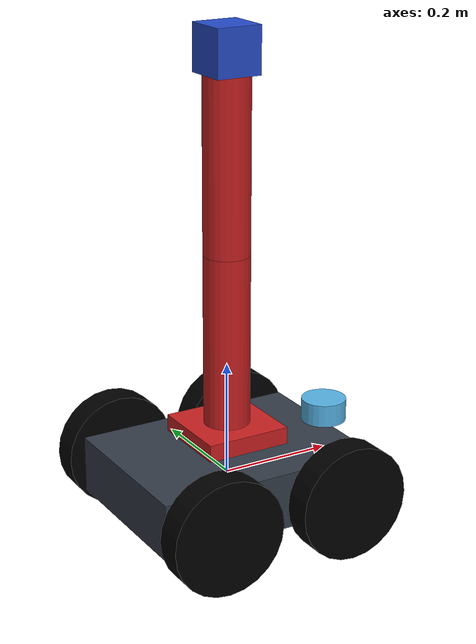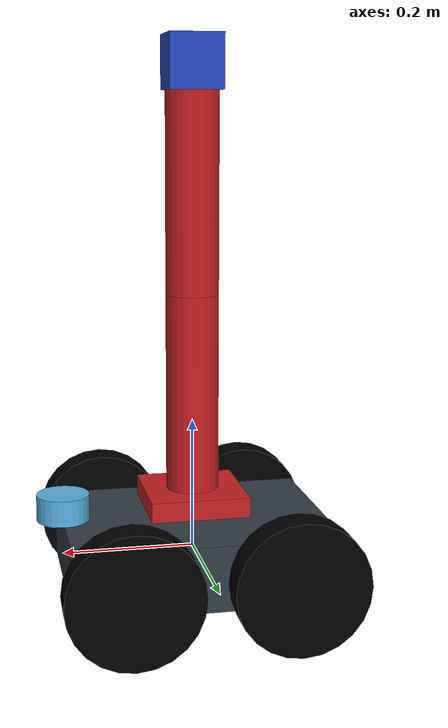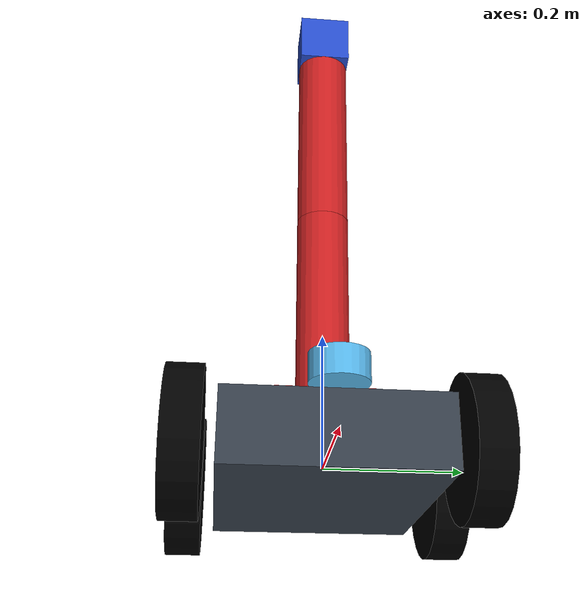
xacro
<?xml version="1.0"?>
<robot name="A"
    xmlns:xacro="http://ros.org/wiki/xacro">

<!-- WHEEL -->
  <xacro:property name="wheel_radius" value="0.1" />
  <xacro:property name="wheel_thickness" value="0.05" />
<!-- ARM -->
  <xacro:property name="arm_radius" value="0.04" />
  <xacro:property name="arm_height" value="0.3" />
<!-- CHASSIS -->
  <xacro:property name="chassis_length" value="0.4" /> <!-- X axis -->
  <xacro:property name="chassis_breadth" value="0.3" /> <!-- Y axis -->
  <xacro:property name="chassis_height" value="0.1" /> <!-- Z axis -->

<!-- Material -->
  <material name="black">
   <color rgba="0.0 0.0 0.0 1.0"/>
  </material>
  <material name="blue">
   <color rgba="0.203125 0.23828125 0.28515625 1.0"/>
  </material>
  <material name="red">
   <color rgba="0.80078125 0.12890625 0.1328125 1.0"/>
  </material>
  <material name="white">
   <color rgba="1.0 1.0 1.0 1.0"/>
  </material>

<!-- Box Inertia -->
  <xacro:macro name="box_inertia" params="mass x y z">
    <inertial>
      <mass value="${mass}"/>
      <inertia ixx="${(1/12)*mass*(y*y+z*z)}"
               ixy="0.0"
               ixz="0.0"
               iyy="${(1/12)*mass*(x*x+z*z)}"
               iyz="0.0"
               izz="${(1/12)*mass*(y*y+x*x)}" />
    </inertial>
  </xacro:macro>
<!-- Cylinder Inertia Wheels-->
  <xacro:macro name="cyl_inertia_W" params="mass r h">
    <inertial>
      <mass value="${mass}" />
      <inertia ixx="${(1/12)*mass*(3*r*r+h*h)}"
               ixy="0.0"
               ixz="0.0"
               iyy="${(1/12)*mass*(3*r*r+h*h)}"
               iyz="0.0"
               izz="${(1/2)*mass*r*r}" />
    </inertial>
  </xacro:macro>
<!-- Cylinder Inertia Arms-->
    <xacro:macro name="cyl_inertia_A">
      <inertial>
        <mass value="0.01" />
        <inertia ixx="0.000010279"
                 ixy="0.0"
                 ixz="0.0"
                 iyy="0.000010279"
                 iyz="0.0"
                 izz="0.000007225" />
      </inertial>
    </xacro:macro>

<!-- BASE -->
  <link name="base_link"></link>
<!-- Chassis -->
  <link name="chassis">
    <visual>
      <geometry>
        <box size="${chassis_length} ${chassis_breadth} ${chassis_height}"/>
      </geometry>
      <material name="blue"/>
    </visual>
    <collision>
      <geometry>
        <box size="${chassis_length} ${chassis_breadth} ${chassis_height}"/>
      </geometry>
    </collision>
    <xacro:box_inertia mass="0.5" x="${chassis_length}" y="${chassis_breadth}" z="${chassis_height}"/>
  </link>

  <joint name="chassis_joint" type="fixed">
      <parent link="base_link"/>
      <child link="chassis"/>
  </joint>

  <gazebo reference="chassis">
       <material>Gazebo/White</material>
    </gazebo>

<!-- WHEEL -->
  <xacro:macro name="wheel" params="prefix suffix posx posy">
    <link name="${prefix}_${suffix}_wheel">
      <visual>
        <origin xyz="0 0 0" rpy="${pi/2} 0 0" />
        <geometry>
          <cylinder radius="${wheel_radius}" length="${wheel_thickness}"/>
        </geometry>
        <material name="black"/>
      </visual>
      <collision>
        <origin xyz="0 0 0" rpy="${pi/2} 0 0" />
        <geometry>
          <cylinder radius="${wheel_radius}" length="${wheel_thickness}"/>
        </geometry>
      </collision>
      <xacro:cyl_inertia_W mass="0.1" r="${wheel_radius}" h="${wheel_thickness}"/>
    </link>

    <joint name="${prefix}_${suffix}_wheel_joint" type="continuous">
      <axis xyz="0 1 0" rpy="0 0 0" />
      <parent link="chassis"/>
      <child link="${prefix}_${suffix}_wheel"/>
      <origin xyz="${(chassis_length*0.3)*posx} ${(chassis_breadth/2+wheel_thickness/2)*1.1*posy} 0" rpy="0 0 0"/>
      <dynamics damping="0"/>
    </joint>

    <gazebo reference="${prefix}_${suffix}_wheel">
       <material>Gazebo/DarkGray</material>
    </gazebo>

    <transmission name="${prefix}_${suffix}_wheel_trans">
      <type>transmission_interface/SimpleTransmission</type>
      <joint name="${prefix}_${suffix}_wheel_joint">
        <!-- Needed for ros deifferential drive controller -->
        <!-- Needed for gazebo differential drive controller -->
        <hardwareInterface>hardware_interface/EffortJointInterface</hardwareInterface>
      </joint>
      <actuator name="${prefix}_${suffix}_wheel_motor">
        <!-- Needed for ros deifferential drive controller -->
        <!-- Needed for gazebo differential drive controller -->
        <hardwareInterface>hardware_interface/EffortJointInterface</hardwareInterface>
        <mechanicalReduction>1</mechanicalReduction>
      </actuator>
    </transmission>
  </xacro:macro>

  <xacro:wheel prefix="front" suffix="left" posx="1" posy="1"/>
  <xacro:wheel prefix="front" suffix="right" posx="1" posy="-1"/>
  <xacro:wheel prefix="back" suffix="left" posx="-1" posy="1"/>
  <xacro:wheel prefix="back" suffix="right" posx="-1" posy="-1"/>

<!-- ARMS -->
  <xacro:macro name="arm" params="number posz">
    <link name="arm_${number}">
      <visual>
        <origin xyz="0 0 ${posz}" rpy="0 0 0" />
        <geometry>
          <cylinder radius="${arm_radius}" length="${arm_height}"/>
        </geometry>
        <material name="red"/>
      </visual>
      <collision>
        <origin xyz="0 0 ${posz}" rpy="0 0 0" />
        <geometry>
          <cylinder radius="${arm_radius}" length="0.2"/>
        </geometry>
      </collision>
      <xacro:cyl_inertia_A/>
    </link>

    <gazebo reference="arm_${number}">
      <material>Gazebo/Red</material>
    </gazebo>

    <transmission name="arm_${number}_trans">
      <type>transmission_interface/SimpleTransmission</type>
      <joint name="arm_${number}_joint">
        <hardwareInterface>hardware_interface/EffortJointInterface</hardwareInterface>
    	</joint>
      <actuator name="arm_${number}_motor">
    		<hardwareInterface>hardware_interface/EffortJointInterface</hardwareInterface>
    		<mechanicalInterface>1</mechanicalInterface>
      </actuator>
    </transmission>
  </xacro:macro>

<!-- Arm-Chassis -->
  <link name="arm_chassis">
    <inertial>
      <mass value="0.1"/>
      <origin xyz="0 0 0" rpy="0 0 0"/>
      <inertia ixx="0.0000416666667"
               ixy="0"
               ixz="0"
               iyy="0.0000416666667"
               iyz="0"
               izz="0.0000416666667"/>
    </inertial>
    <collision>
      <origin xyz="0 0 0" rpy="0 0 0"/>
      <geometry>
        <box size="0.15 0.15 0.03"/>
      </geometry>
    </collision>
    <visual>
      <origin xyz="0 0 0" rpy="0 0 0"/>
      <geometry>
        <box size="0.15 0.15 0.03"/>
      </geometry>
      <material name="red" />
    </visual>
  </link>

  <transmission name="arm_chassis_trans">
      <type>transmission_interface/SimpleTransmission</type>
      <joint name="arm_chassis_joint">
          <hardwareInterface>hardware_interface/EffortJointInterface</hardwareInterface>
      </joint>
      <actuator name="arm_chassis_motor">
          <hardwareInterface>hardware_interface/EffortJointInterface</hardwareInterface>
          <mechanicalInterface>1</mechanicalInterface>
      </actuator>
  </transmission>
  <joint name="arm_chassis_joint" type="continuous">
      <axis xyz="0 0 1" />
      <origin rpy="0 0 0" xyz="0 0 0.08" />
      <parent link="chassis" />
      <child link="arm_chassis" />
  </joint>

  <gazebo reference="arm_chassis">
   <material>Gazebo/Red</material>
  </gazebo>

<!-- Arm 1 -->
  <xacro:arm number="1" posz="${arm_height/2}"/>

  <joint name="arm_1_joint" type="revolute">
  	<axis xyz="0 1 0"/>
  	<limit effort="1000.0"
           lower="-1.8"
           upper="1.8"
           velocity="0.2"/>
  	<origin rpy="0 0 0" xyz="0 0 0.015"/>
  	<parent link="arm_chassis"/>
  	<child link="arm_1"/>
  </joint>

<!-- Arm 2 -->
  <xacro:arm number="2" posz="${arm_height/2}"/>

  <joint name="arm_2_joint" type="revolute">
    <axis xyz="0 1 0"/>
    <limit effort="1000.0"
           lower="-1.8"
           upper="1.8"
           velocity="0.2"/>
    <origin rpy="0 0 0" xyz="0 0 ${arm_height}"/>
    <parent link="arm_1"/>
    <child link="arm_2"/>
  </joint>

<!-- SESNORS -->
  <xacro:include filename="$(find assignment2)/urdf/sensors.xacro"/>

<!-- LaserScan -->
  <xacro:LaserScan laser_name="LaserScan" parent_link="chassis">
    <cylinder length="0.04" radius="0.04"/>
    <origin xyz="${(chassis_length/2)} 0 ${(chassis_height/2)*1.5}" rpy="0 0 0"/>
  </xacro:LaserScan>

<!-- RGB Camera -->
<xacro:RGB_camera camera_name="RGB" parent_link="arm_2">
  <box size="0.08 0.08 0.08"/>
  <origin xyz="0 0 0.34" rpy="0 0 0"/>
</xacro:RGB_camera>

<!-- GAZEBO Plugins -->
<!-- Skid Steer Drive Controller-->
  <gazebo>
    <plugin name="mobile_base_controller" filename="libgazebo_ros_skid_steer_drive.so">

      <updateRate>100.0</updateRate>
      <robotNamespace>/A</robotNamespace>

      <leftFrontJoint>front_left_wheel_joint</leftFrontJoint>
      <rightFrontJoint>front_right_wheel_joint</rightFrontJoint>
      <leftRearJoint>back_left_wheel_joint</leftRearJoint>
      <rightRearJoint>back_right_wheel_joint</rightRearJoint>

      <wheelSeparation>0.264</wheelSeparation>
      <wheelDiameter>${wheel_radius}*2</wheelDiameter>

      <robotBaseFrame>base_link</robotBaseFrame>
      <!-- Maximum torque which the wheels can produce, in Nm -->
      <torque>20</torque>
      <!-- Topic to receive geometry_msgs/Twist message commands, defaults to `cmd_vel` -->
      <commandTopic>/cmd_vel</commandTopic>
      <!-- Topic to publish nav_msgs/Odometry messages, defaults to `odom` -->
      <odometryTopic>/odom</odometryTopic>
      <!-- Odometry frame, defaults to `odom` -->
      <odometryFrame>odom</odometryFrame>
      <odometryRate>20.0</odometryRate>

      <covariance_x>100.0</covariance_x>
      <covariance_y>100.0</covariance_y>
      <covariance_yaw>100.0</covariance_yaw>

      <broadcastTF>true</broadcastTF>
    </plugin>
  </gazebo>

<!-- ROS Control -->
  <gazebo>
    <plugin name="gazebo_ros_control" filename="libgazebo_ros_control.so">
      <robotNamespace>/A</robotNamespace>
      <legacyModeNS>true</legacyModeNS>
      <robotSimType>gazebo_ros_control/DefaultRobotHWSim</robotSimType>
    </plugin>
  </gazebo>

</robot>

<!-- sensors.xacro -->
<robot
  xmlns:xacro="http://ros.org/wiki/xacro">

<!-- RGB Camera -->
  <xacro:macro name="RGB_camera" params="camera_name parent_link *box *origin">
    <link name="${camera_name}">
      <collision>
        <origin xyz="0 0 0" rpy="0 0 0"/>
        <geometry>
          <xacro:insert_block name="box"/>
        </geometry>
      </collision>

      <visual>
        <origin xyz="0 0 0" rpy="0 0 0"/>
        <geometry>
          <xacro:insert_block name="box"/>
        </geometry>
      </visual>

    </link>

    <joint name="${camera_name}_joint" type="continuous">
      <axis xyz="0 0 1" />
      <xacro:insert_block name="origin"/>
      <parent link="${parent_link}"/>
      <child link="${camera_name}"/>
    </joint>

    <gazebo reference="${camera_name}">
      <sensor type="camera" name="${camera_name}">
        <update_rate>30.0</update_rate>
        <camera name="${camera_name}">
          <horizontal_fov>1.3962634</horizontal_fov>
          <image>
            <width>800</width>
            <height>800</height>
            <format>R8G8B8</format>
          </image>
          <clip>
            <near>0.02</near>
            <far>300</far>
          </clip>
          <noise>
            <type>gaussian</type>
            <mean>0.0</mean>
            <stddev>0.007</stddev>
          </noise>
        </camera>
        <plugin name="rgb_camera_controller" filename="libgazebo_ros_camera.so">
          <alwaysOn>true</alwaysOn>
          <updateRate>0.0</updateRate>
          <cameraName>${camera_name}</cameraName>
          <imageTopicName>${camera_name}/image_raw</imageTopicName>
          <cameraInfoTopicName>${camera_name}/camera_info</cameraInfoTopicName>
          <frameName>${camera_name}</frameName>
          <hackBaseline>0.07</hackBaseline>
          <distortionK1>0.0</distortionK1>
          <distortionK2>0.0</distortionK2>
          <distortionK3>0.0</distortionK3>
          <distortionT1>0.0</distortionT1>
          <distortionT2>0.0</distortionT2>
        </plugin>
      </sensor>
      <material>Gazebo/Blue</material>
    </gazebo>

    <transmission name="${camera_name}_trans">
      <type>transmission_interface/SimpleTransmission</type>
      <joint name="${camera_name}_joint">
        <hardwareInterface>hardware_interface/EffortJointInterface</hardwareInterface>
      </joint>
      <actuator name="${camera_name}_motor">
        <hardwareInterface>hardware_interface/EffortJointInterface</hardwareInterface>
        <mechanicalReduction>1</mechanicalReduction>
      </actuator>
    </transmission>

  </xacro:macro>

<!-- Depth Camera -->
  <xacro:macro name="depth_camera" params="camera_name parent_link *box *origin">
    <link name="${camera_name}">
      <collision>
        <origin xyz="0 0 0" rpy="0 0 0"/>
        <geometry>
          <xacro:insert_block name="box"/>
        </geometry>
      </collision>

      <visual>
        <origin xyz="0 0 0" rpy="0 0 0"/>
        <geometry>
          <xacro:insert_block name="box"/>
        </geometry>
      </visual>

    </link>

    <joint name="${camera_name}_joint" type="fixed">
      <axis xyz="1 0 0" />
      <xacro:insert_block name="origin"/>
      <parent link="${parent_link}"/>
      <child link="${camera_name}"/>
    </joint>

    <link name="camera_depth_link"></link>
    <joint name="camera_depth_correction_joint" type="fixed">
      <origin xyz="0 0 0" rpy="-${pi/2} 0 -${pi/2} "/>
      <parent link="${camera_name}"/>
      <child link="camera_depth_link"/>
    </joint>

    <gazebo reference="${camera_name}">
      <sensor name="${camera_name}_camera" type="depth">
        <update_rate>20</update_rate>
        <camera>
          <horizontal_fov>1.047198</horizontal_fov>
          <image>
            <width>640</width>
            <height>480</height>
            <format>R8G8B8</format>
          </image>
          <clip>
            <near>0.001</near>
            <far>3</far>
          </clip>
        </camera>
        <plugin name="depth_camera_controller" filename="libgazebo_ros_openni_kinect.so">
          <baseline>0.2</baseline>
          <alwaysOn>true</alwaysOn>
          <updateRate>1.0</updateRate>
          <cameraName>${camera_name}_ir</cameraName>
          <imageTopicName>/${camera_name}/depth/image_raw</imageTopicName>
          <cameraInfoTopicName>/${camera_name}/depth/camera_info</cameraInfoTopicName>
          <depthImageTopicName>/${camera_name}/depth/image_raw</depthImageTopicName>
          <depthImageInfoTopicName>/${camera_name}/depth/camera_info</depthImageInfoTopicName>
          <pointCloudTopicName>/${camera_name}/depth/points</pointCloudTopicName>
          <frameName>camera_depth_link</frameName>
          <pointCloudCutoff>0.001</pointCloudCutoff>
          <pointCloudCutoffMax>3.0</pointCloudCutoffMax>
          <distortionK1>0.00000001</distortionK1>
          <distortionK2>0.00000001</distortionK2>
          <distortionK3>0.00000001</distortionK3>
          <distortionT1>0.00000001</distortionT1>
          <distortionT2>0.00000001</distortionT2>
          <CxPrime>0</CxPrime>
          <Cx>0</Cx>
          <Cy>0</Cy>
          <focalLength>0</focalLength>
          <hackBaseline>0</hackBaseline>
        </plugin>
      </sensor>
    </gazebo>
  </xacro:macro>

<!-- IMU -->
  <xacro:macro name="imu" params="imu_name parent_link *box *origin">
    <link name="${imu_name}">

      <visual>
        <origin xyz="0 0 0" rpy="0 0 0"/>
        <geometry>
          <xacro:insert_block name="box"/>
        </geometry>
      </visual>

    </link>

    <joint name="${imu_name}_joint" type="fixed">
      <axis xyz="0 0 1" />
      <xacro:insert_block name="origin"/>
      <parent link="${parent_link}"/>
      <child link="${imu_name}"/>
    </joint>

    <gazebo reference="${imu_name}">
      <gravity>true</gravity>
      <sensor name="${imu_name}" type="imu">
        <always_on>true</always_on>
        <update_rate>100</update_rate>
        <visualize>true</visualize>
        <topic>__default_topic__</topic>
        <plugin filename="libgazebo_ros_imu_sensor.so" name="imu_controller">
          <topicName>${imu_name}</topicName>
          <bodyName>${imu_name}_link</bodyName>
          <updateRateHZ>30.0</updateRateHZ>
          <gaussianNoise>0.0</gaussianNoise>
          <xyzOffset>0 0 0</xyzOffset>
          <rpyOffset>0 0 0</rpyOffset>
          <frameName>${imu_name}</frameName>
        </plugin>
        <pose>0 0 0 0 0 0</pose>
      </sensor>
    </gazebo>
  </xacro:macro>

<!-- LaserScan -->
  <xacro:macro name="LaserScan" params="laser_name parent_link *cylinder *origin">
    <link name="${laser_name}">
      <collision>
        <origin xyz="0 0 0" rpy="0 0 0"/>
        <geometry>
          <xacro:insert_block name="cylinder"/>
        </geometry>
      </collision>

      <visual>
        <origin xyz="0 0 0" rpy="0 0 0"/>
        <geometry>
          <xacro:insert_block name="cylinder"/>
        </geometry>
      </visual>

    </link>

    <joint name="${laser_name}_joint" type="fixed">
      <axis xyz="0 0 1" />
      <xacro:insert_block name="origin"/>
      <parent link="${parent_link}"/>
      <child link="${laser_name}"/>
    </joint>

    <gazebo reference="${laser_name}">
      <sensor type="ray" name="${laser_name}">
        <pose>0 0 0 0 0 0</pose>
        <visualize>true</visualize>
        <update_rate>40</update_rate>
        <ray>
          <scan>
            <horizontal>
              <samples>720</samples>
              <resolution>1</resolution>
              <min_angle>-1.570796</min_angle>
              <max_angle>1.570796</max_angle>
            </horizontal>
          </scan>
          <range>
            <min>0.10</min>
            <max>30.0</max>
            <resolution>0.01</resolution>
          </range>
          <noise>
            <type>gaussian</type>
            <mean>0.0</mean>
            <stddev>0.01</stddev>
          </noise>
        </ray>
        <plugin name="laser_scanner_controller" filename="libgazebo_ros_laser.so">
          <topicName>/scan</topicName>
          <frameName>${laser_name}</frameName>
        </plugin>
      </sensor>
    </gazebo>
  </xacro:macro>

</robot>
